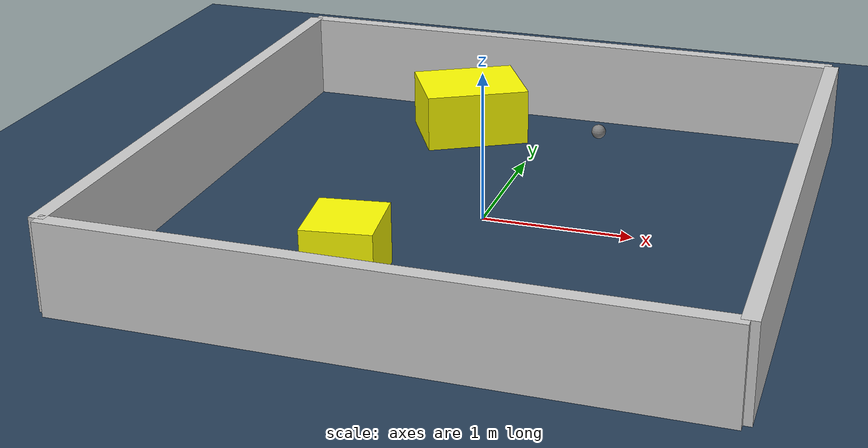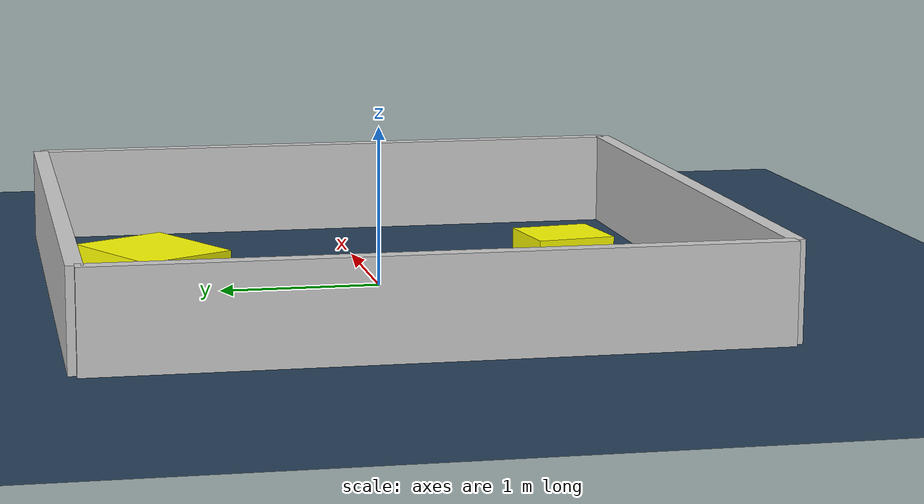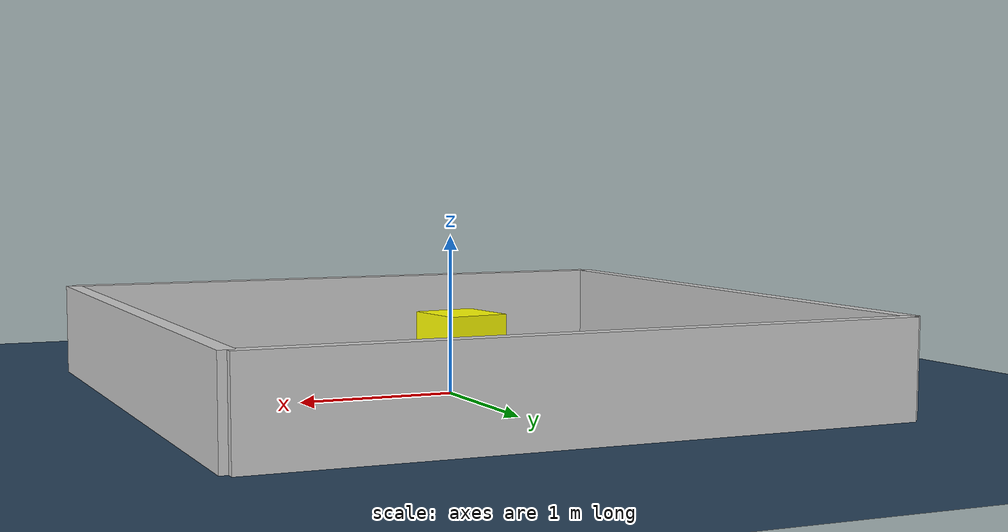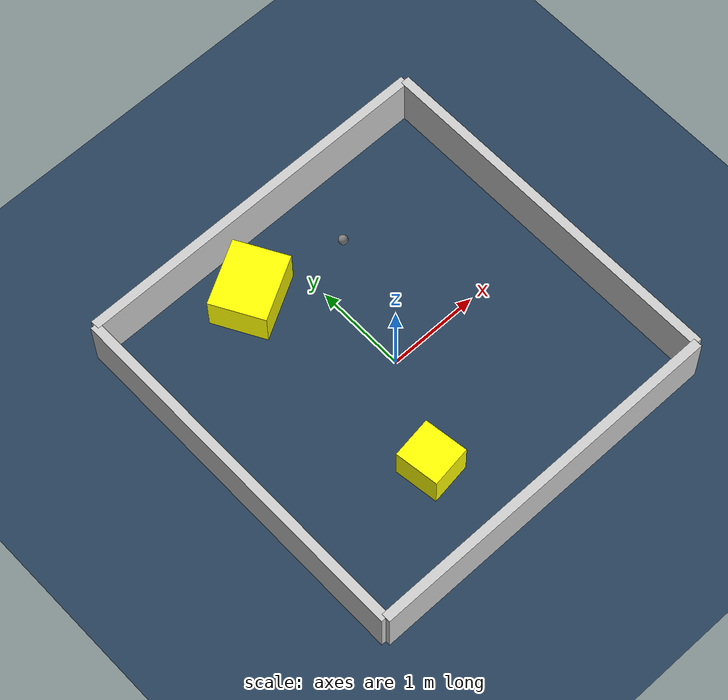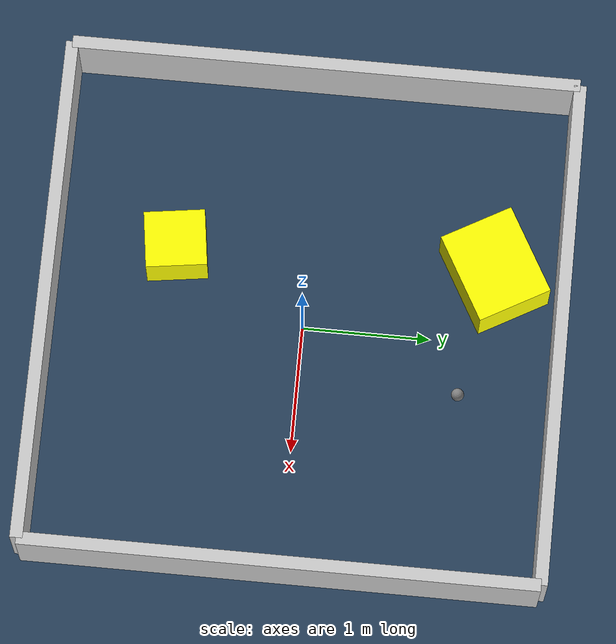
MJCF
<?xml version="1.0" ?>
<mujoco model="generated_environment">
  <option timestep="0.01" integrator="RK4" cone="elliptic"/>
  <default>
    <geom density="1"/>
  </default>
  <asset>
    <texture builtin="gradient" height="3072" rgb1="0.3 0.5 0.7" rgb2="0 0 0" type="skybox" width="512"/>
    <texture builtin="checker" height="300" mark="edge" markrgb="0.8 0.8 0.8" name="groundplane" rgb1="0.2 0.3 0.4" rgb2="0.1 0.2 0.3" type="2d" width="300"/>
    <material name="groundplane" reflectance="0.2" texrepeat="5 5" texture="groundplane" texuniform="true"/>
    <material name="robot" rgba="0.0 1.0 0.0 1"/>
  </asset>
  <worldbody>
    <light dir="0 0 -1" directional="true" pos="0 0 1.5"/>
    <geom condim="4" friction="1.0 0.005 0.001" material="groundplane" name="floor" size="0 0 0.05" type="plane"/>
    <body name="walls">
      <geom name="wall_1" condim="4" pos="-2.0 0.0 0.3" rgba="0.800000011920929 0.800000011920929 0.800000011920929 1.0" size="0.05 2.0 0.3" type="box"/>
      <geom name="wall_2" condim="4" pos="2.0 0.0 0.3" rgba="0.800000011920929 0.800000011920929 0.800000011920929 1.0" size="0.05 2.0 0.3" type="box"/>
      <geom name="wall_3" condim="4" pos="0.0 -2.0 0.3" rgba="0.800000011920929 0.800000011920929 0.800000011920929 1.0" size="2.0 0.05 0.3" type="box"/>
      <geom name="wall_4" condim="4" pos="0.0 2.0 0.3" rgba="0.800000011920929 0.800000011920929 0.800000011920929 1.0" size="2.0 0.05 0.3" type="box"/>
    </body>
    <body name="robot">
      <joint name="joint_x" type="slide" pos="0 0 0" axis="1 0 0"/>
      <joint name="joint_y" type="slide" pos="0 0 0" axis="0 1 0"/>
      <geom name="robot" type="sphere" pos="0.4731618535857285 1.2531111662249592 0.2" size="0.05" mass="5." friction="1.0 0.005 0.0001" condim="4"/>
      <site name="sensor_ball"/>
    </body>
    <body name="obstacle_1_movable">
      <geom name="obstacle_1_movable" condim="4" pos="-0.5288432846856514 -1.0450116188815968 0.2" euler="0 0 97.83401427042624" friction="1.0 0.005 0.001" rgba="1 1 0 1" size="0.23963569011379326 0.22354434290930134 0.2" type="box" mass="0.1"/>
      <joint type="free"/>
    </body>
    <body name="obstacle_2_movable">
      <geom name="obstacle_2_movable" condim="4" pos="-0.5532935951505191 1.4584898878513284 0.2" euler="0 0 209.11554907597673" friction="1.0 0.005 0.001" rgba="1 1 0 1" size="0.3686252260782553 0.30180523410520027 0.2" type="box" mass="0.1"/>
      <joint type="free"/>
    </body>
  </worldbody>
  <actuator>
    <motor name="actuator_x" joint="joint_x" gear="1" ctrlrange="-1 1"/>
    <motor name="actuator_y" joint="joint_y" gear="1" ctrlrange="-1 1"/>
  </actuator>
</mujoco>
